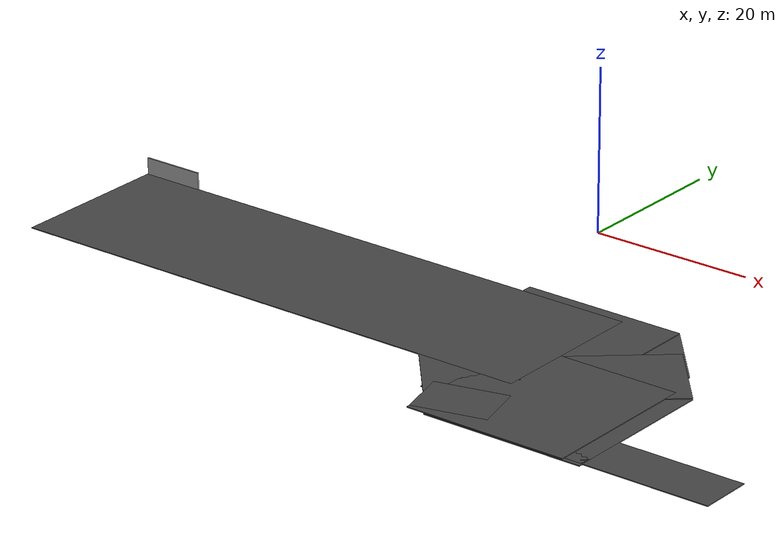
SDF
<sdf version="1.7">
 <world name="default">
  <light name="sun" type="directional">
   <pose>0 0 10 0 -0 0</pose>
   <diffuse>0.8 0.8 0.8 1</diffuse>
   <specular>0.2 0.2 0.2 1</specular>
   <attenuation>
    <range>1000</range>
    <constant>0.9</constant>
    <linear>0.01</linear>
    <quadratic>0.001</quadratic>
   </attenuation>
   <direction>-0.5 0.1 -0.9</direction>
   <spot><inner_angle>0</inner_angle><outer_angle>0</outer_angle><falloff>0</falloff></spot>
  </light>
  <gravity>0 0 -9.8</gravity>
  <magnetic_field>6e-06 2.3e-05 -4.2e-05</magnetic_field>
  <atmosphere type="adiabatic"/>
  <physics name="default_physics" default="0" type="ode">
   <max_step_size>0.001</max_step_size>
   <real_time_factor>1</real_time_factor>
   <real_time_update_rate>1000</real_time_update_rate>
  </physics>
  <scene>
   <ambient>0.4 0.4 0.4 1</ambient>
   <background>0.7 0.7 0.7 1</background>
   <shadows>1</shadows>
   <sky><clouds><speed>12</speed></clouds></sky>
  </scene>
  <spherical_coordinates>
   <surface_model>EARTH_WGS84</surface_model>
   <latitude_deg>0</latitude_deg>
   <longitude_deg>0</longitude_deg>
   <elevation>0</elevation>
   <heading_deg>0</heading_deg>
  </spherical_coordinates>
  <model name="asphalt_plane">
   <static>1</static>
   <link name="link">
    <collision name="collision"><geometry><box><size>20 20 0.1</size></box></geometry></collision>
    <visual name="visual">
     <cast_shadows>0</cast_shadows>
     <geometry><box><size>20 20 0.1</size></box></geometry>
     <material>
      <script>
       <uri>model://asphalt_plane/materials/scripts</uri>
       <uri>model://asphalt_plane/materials/textures</uri>
       <name>vrc/asphalt</name>
      </script>
     </material>
    </visual>
   </link>
   <pose>13.9727 -28.1595 0.75 0 -0 0</pose>
  </model>
  <model name="grey_wall">
   <static>1</static>
   <link name="link">
    <pose>0 0 1.4 0 -0 0</pose>
    <collision name="collision"><geometry><box><size>7.5 0.2 2.8</size></box></geometry></collision>
    <visual name="visual">
     <cast_shadows>0</cast_shadows>
     <geometry><box><size>7.5 0.2 2.8</size></box></geometry>
     <material>
      <script>
       <uri>model://grey_wall/materials/scripts</uri>
       <uri>model://grey_wall/materials/textures</uri>
       <name>vrc/grey_wall</name>
      </script>
     </material>
    </visual>
   </link>
   <pose>-46.1204 -19.4411 0 0 -0 0</pose>
  </model>
  <model name="asphalt_plane_clone">
   <static>1</static>
   <link name="link">
    <collision name="collision"><geometry><box><size>20 20 0.1</size></box></geometry></collision>
    <visual name="visual">
     <cast_shadows>0</cast_shadows>
     <geometry><box><size>20 20 0.1</size></box></geometry>
     <material>
      <script>
       <uri>model://asphalt_plane/materials/scripts</uri>
       <uri>model://asphalt_plane/materials/textures</uri>
       <name>vrc/asphalt</name>
      </script>
     </material>
    </visual>
   </link>
   <pose>20.1171 -35.5132 0.61839 0 -0 0</pose>
  </model>
  <model name="asphalt_plane_clone_0">
   <static>1</static>
   <link name="link">
    <collision name="collision"><geometry><box><size>13.563 11.0139 0.1</size></box></geometry></collision>
    <visual name="visual">
     <cast_shadows>0</cast_shadows>
     <geometry><box><size>13.563 11.0139 0.1</size></box></geometry>
     <material>
      <script>
       <uri>model://asphalt_plane/materials/scripts</uri>
       <uri>model://asphalt_plane/materials/textures</uri>
       <name>vrc/asphalt</name>
      </script>
     </material>
    </visual>
   </link>
   <pose>22.3909 -26.7225 0.61839 0 -0 0.708573</pose>
  </model>
  <model name="asphalt_plane_clone_clone">
   <static>1</static>
   <link name="link">
    <collision name="collision"><geometry><box><size>20 20 0.1</size></box></geometry></collision>
    <visual name="visual">
     <cast_shadows>0</cast_shadows>
     <geometry><box><size>20 20 0.1</size></box></geometry>
     <material>
      <script>
       <uri>model://asphalt_plane/materials/scripts</uri>
       <uri>model://asphalt_plane/materials/textures</uri>
       <name>vrc/asphalt</name>
      </script>
     </material>
    </visual>
   </link>
   <pose>24.4368 -40.6596 0.61839 0 -0 0</pose>
  </model>
  <model name="asphalt_plane_clone_0_clone">
   <static>1</static>
   <link name="link">
    <collision name="collision"><geometry><box><size>13.563 11.0139 0.1</size></box></geometry></collision>
    <visual name="visual">
     <cast_shadows>0</cast_shadows>
     <geometry><box><size>13.563 11.0139 0.1</size></box></geometry>
     <material>
      <script>
       <uri>model://asphalt_plane/materials/scripts</uri>
       <uri>model://asphalt_plane/materials/textures</uri>
       <name>vrc/asphalt</name>
      </script>
     </material>
    </visual>
   </link>
   <pose>25.6949 -30.9 0.75 0 -0 0.708573</pose>
  </model>
  <model name="asphalt_plane_clone_0_clone_0">
   <static>1</static>
   <link name="link">
    <collision name="collision"><geometry><box><size>13.563 11.0139 0.1</size></box></geometry></collision>
    <visual name="visual">
     <cast_shadows>0</cast_shadows>
     <geometry><box><size>13.563 11.0139 0.1</size></box></geometry>
     <material>
      <script>
       <uri>model://asphalt_plane/materials/scripts</uri>
       <uri>model://asphalt_plane/materials/textures</uri>
       <name>vrc/asphalt</name>
      </script>
     </material>
    </visual>
   </link>
   <pose>12.7389 -37.9417 0.75 0 -0 0.708573</pose>
  </model>
  <model name="asphalt_plane_clone_1">
   <static>1</static>
   <link name="link">
    <collision name="collision"><geometry><box><size>20 6.36554 0.1</size></box></geometry></collision>
    <visual name="visual">
     <cast_shadows>0</cast_shadows>
     <geometry><box><size>20 6.36554 0.1</size></box></geometry>
     <material>
      <script>
       <uri>model://asphalt_plane/materials/scripts</uri>
       <uri>model://asphalt_plane/materials/textures</uri>
       <name>vrc/asphalt</name>
      </script>
     </material>
    </visual>
   </link>
   <pose>39.8729 -46.9729 0.61839 0 -0 0</pose>
  </model>
  <model name="asphalt_plane_clone_1_clone">
   <static>1</static>
   <link name="link">
    <collision name="collision"><geometry><box><size>8.8276 6.36555 0.1</size></box></geometry></collision>
    <visual name="visual">
     <cast_shadows>0</cast_shadows>
     <geometry><box><size>8.8276 6.36555 0.1</size></box></geometry>
     <material>
      <script>
       <uri>model://asphalt_plane/materials/scripts</uri>
       <uri>model://asphalt_plane/materials/textures</uri>
       <name>vrc/asphalt</name>
      </script>
     </material>
    </visual>
   </link>
   <pose>15.7139 -45.9919 0.75 0 -0 0.246345</pose>
  </model>
  <model name="asphalt_plane_clone_clone_clone">
   <static>1</static>
   <link name="link">
    <collision name="collision"><geometry><box><size>20 20 0.1</size></box></geometry></collision>
    <visual name="visual">
     <cast_shadows>0</cast_shadows>
     <geometry><box><size>20 20 0.1</size></box></geometry>
     <material>
      <script>
       <uri>model://asphalt_plane/materials/scripts</uri>
       <uri>model://asphalt_plane/materials/textures</uri>
       <name>vrc/asphalt</name>
      </script>
     </material>
    </visual>
   </link>
   <pose>22.2316 -40.6186 0.75 0 -0 0</pose>
  </model>
  <model name="asphalt_plane_clone_2">
   <static>1</static>
   <link name="link">
    <collision name="collision"><geometry><box><size>67.2972 20 0.1</size></box></geometry></collision>
    <visual name="visual">
     <cast_shadows>0</cast_shadows>
     <geometry><box><size>67.2972 20 0.1</size></box></geometry>
     <material>
      <script>
       <uri>model://asphalt_plane/materials/scripts</uri>
       <uri>model://asphalt_plane/materials/textures</uri>
       <name>vrc/asphalt</name>
      </script>
     </material>
    </visual>
   </link>
   <pose>-16.2687 -29.4763 0.75 0 -0 0</pose>
  </model>
 </world>
</sdf>
